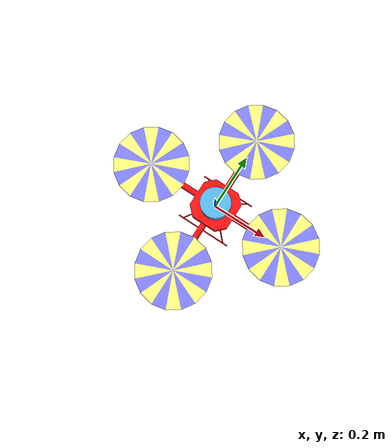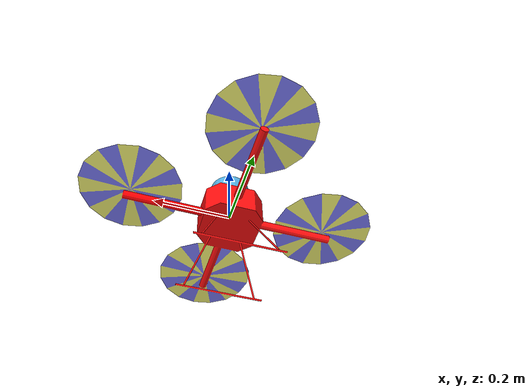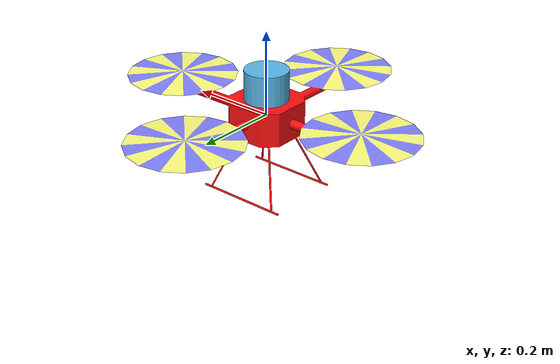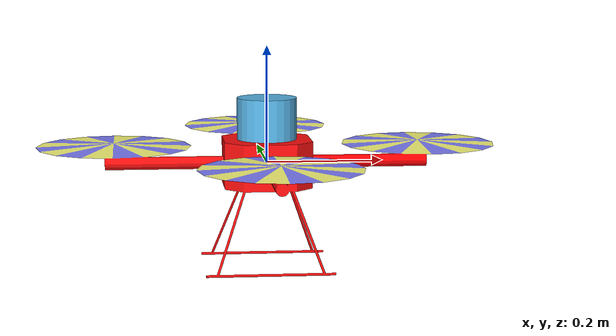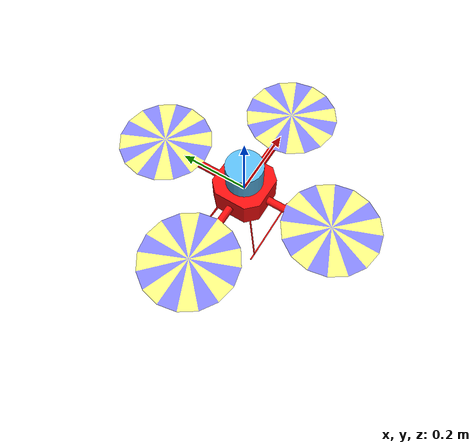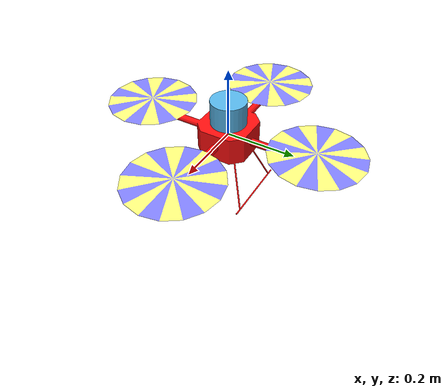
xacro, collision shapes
<?xml version="1.0"?>

<robot name="quadrotor" xmlns:xacro="http://www.ros.org/wiki/xacro">

    <xacro:property name="M_PI" value="3.1415926535897931" />

    <!-- Included URDF Files -->
    <xacro:include filename="$(find hector_quadrotor_description)/urdf/quadrotor_base.urdf.xacro" />

    <!-- Instantiate quadrotor_base_macro once (has no parameters atm) -->
    <xacro:quadrotor_base_macro />

    <!-- velodyne_VLP16 mounted above quadrotor body, z origin might not accurate! -->
    <xacro:include filename="$(find velodyne_description)/urdf/VLP-16.urdf.xacro" />
    <xacro:VLP-16 name="laser0" parent="base_link" topic="/velodyne_points" hz="10" samples="440">
      <origin xyz="0 0 0.04" rpy="0 0 0" />
    </xacro:VLP-16>

    <!-- Forward facing camera -->

</robot>

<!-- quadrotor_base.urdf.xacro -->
<robot xmlns:xacro="http://www.ros.org/wiki/xacro">

  <xacro:property name="pi" value="3.1415926535897931" />

  <!-- Main quadrotor link -->
  <xacro:macro name="quadrotor_base_macro">
    <link name="base_link">
      <inertial>
        <mass value="1.477" />
        <origin xyz="0 0 0" />
        <inertia ixx="0.01152" ixy="0.0" ixz="0.0" iyy="0.01152" iyz="0.0" izz="0.0218" />
      </inertial>

      <visual>
        <origin xyz="0 0 0" rpy="0 0 0" />
        <geometry>
          <mesh filename="package://hector_quadrotor_description/meshes/quadrotor/quadrotor_base.dae"/>
        </geometry>
      </visual>

      <collision>
        <origin xyz="0 0 0" rpy="0 0 0" />
        <geometry>
          <mesh filename="package://hector_quadrotor_description/meshes/quadrotor/quadrotor_base.stl"/>
        </geometry>
      </collision>
    </link>

    <!-- Sonar height sensor -->

  </xacro:macro>
</robot>

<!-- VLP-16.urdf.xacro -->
<robot xmlns:xacro="http://www.ros.org/wiki/xacro" name="VLP-16">
  <xacro:property name="M_PI" value="3.1415926535897931" />
  <xacro:macro name="VLP-16" params="*origin is_sim:=true parent:=base_link name:=velodyne tf_prefix:='' topic:=/velodyne_points organize_cloud:=false hz:=10 lasers:=16 samples:=1875 collision_range:=0.3 min_range:=0.0 max_range:=100.0 noise:=0.008 min_angle:=-${M_PI} max_angle:=${M_PI} gpu:=false">

    <joint name="${name}_base_mount_joint" type="fixed">
      <xacro:insert_block name="origin" />
      <parent link="${parent}"/>
      <child link="${name}_base_link"/>
    </joint>

    <link name="${name}_base_link">
      <inertial>
        <mass value="0.83"/>
        <origin xyz="0 0 0.03585"/>
        <inertia ixx="${(0.83 * (3.0*0.0516*0.0516 + 0.0717*0.0717)) / 12.0}" ixy="0" ixz="0"
          iyy="${(0.83 * (3.0*0.0516*0.0516 + 0.0717*0.0717)) / 12.0}" iyz="0"
          izz="${0.5 * 0.83 * (0.0516*0.0516)}"/>
      </inertial>
      <visual>
        <geometry>
          <mesh filename="package://velodyne_description/meshes/VLP16_base_1.dae" />
        </geometry>
      </visual>
      <visual>
        <geometry>
          <mesh filename="package://velodyne_description/meshes/VLP16_base_2.dae" />
        </geometry>
      </visual>
      <collision>
        <origin rpy="0 0 0" xyz="0 0 0.03585"/>
        <geometry>
          <cylinder radius="0.0516" length="0.0717"/>
        </geometry>
      </collision>
    </link>

    <joint name="${name}_base_scan_joint" type="fixed" >
      <origin xyz="0 0 0.0377" rpy="0 0 0" />
      <parent link="${name}_base_link" />
      <child link="${name}"/>
    </joint>

    <link name="${name}">
      <inertial>
        <mass value="0.01"/>
        <origin xyz="0 0 0"/>
        <inertia ixx="1e-7" ixy="0" ixz="0" iyy="1e-7" iyz="0" izz="1e-7"/>
      </inertial>
      <visual>
        <origin xyz="0 0 -0.0377" />
        <geometry>
          <mesh filename="package://velodyne_description/meshes/VLP16_scan.dae" />
        </geometry>
      </visual>
      <collision>
        <geometry>
          <sphere radius="0"/>
        </geometry>
      </collision>
    </link>

    <!-- Gazebo requires the velodyne_gazebo_plugins package -->
    <xacro:if value="${is_sim}">
        <gazebo reference="${name}">
            <xacro:if value="${gpu}">
                <sensor type="gpu_ray" name="${name}-VLP16">
                <pose>0 0 0 0 0 0</pose>
                <visualize>false</visualize>
                <update_rate>${hz}</update_rate>
                <ray>
                    <scan>
                    <horizontal>
                        <samples>${samples}</samples>
                        <resolution>1</resolution>
                        <min_angle>${min_angle}</min_angle>
                        <max_angle>${max_angle}</max_angle>
                    </horizontal>
                    <vertical>
                        <samples>${lasers}</samples>
                        <resolution>1</resolution>
                        <min_angle>-${15.0*M_PI/180.0}</min_angle>
                        <max_angle> ${15.0*M_PI/180.0}</max_angle>
                    </vertical>
                    </scan>
                    <range>
                    <min>${collision_range}</min>
                    <max>${max_range+1}</max>
                    <resolution>0.001</resolution>
                    </range>
                    <noise>
                    <type>gaussian</type>
                    <mean>0.0</mean>
                    <stddev>0.0</stddev>
                    </noise>
                </ray>
                <plugin name="gazebo_ros_laser_controller" filename="libgazebo_ros_velodyne_laser.so">
                    <ros>
                    <namespace>/${name}</namespace>
                    <remapping>~/out:=${topic}</remapping>
                    </ros>
                    <tf_prefix>${tf_prefix}</tf_prefix>
                    <frame_name>${name}</frame_name>
                    <organize_cloud>${organize_cloud}</organize_cloud>
                    <min_range>${min_range}</min_range>
                    <max_range>${max_range}</max_range>
                    <gaussian_noise>${noise}</gaussian_noise>
                </plugin>
                </sensor>
            </xacro:if>
            <xacro:unless value="${gpu}">
                <sensor type="ray" name="${name}-VLP16">
                <pose>0 0 0 0 0 0</pose>
                <visualize>false</visualize>
                <update_rate>${hz}</update_rate>
                <ray>
                    <scan>
                    <horizontal>
                        <samples>${samples}</samples>
                        <resolution>1</resolution>
                        <min_angle>${min_angle}</min_angle>
                        <max_angle>${max_angle}</max_angle>
                    </horizontal>
                    <vertical>
                        <samples>${lasers}</samples>
                        <resolution>1</resolution>
                        <min_angle>-${15.0*M_PI/180.0}</min_angle>
                        <max_angle> ${15.0*M_PI/180.0}</max_angle>
                    </vertical>
                    </scan>
                    <range>
                    <min>${collision_range}</min>
                    <max>${max_range+1}</max>
                    <resolution>0.001</resolution>
                    </range>
                    <noise>
                    <type>gaussian</type>
                    <mean>0.0</mean>
                    <stddev>0.0</stddev>
                    </noise>
                </ray>
                <plugin name="gazebo_ros_laser_controller" filename="libgazebo_ros_velodyne_laser.so">
                    <ros>
                    <namespace>/${name}</namespace>
                    <remapping>~/out:=${topic}</remapping>
                    </ros>
                    <tf_prefix>${tf_prefix}</tf_prefix>
                    <frame_name>${name}</frame_name>
                    <organize_cloud>${organize_cloud}</organize_cloud>
                    <min_range>${min_range}</min_range>
                    <max_range>${max_range}</max_range>
                    <gaussian_noise>${noise}</gaussian_noise>
                </plugin>
                </sensor>
            </xacro:unless>
        </gazebo>
    </xacro:if>

  </xacro:macro>
</robot>
